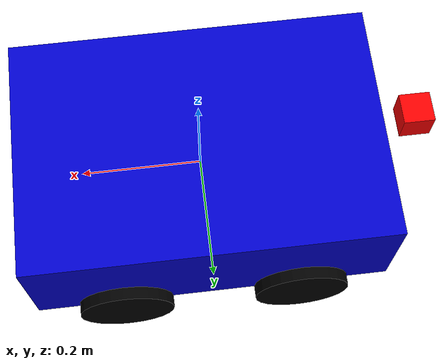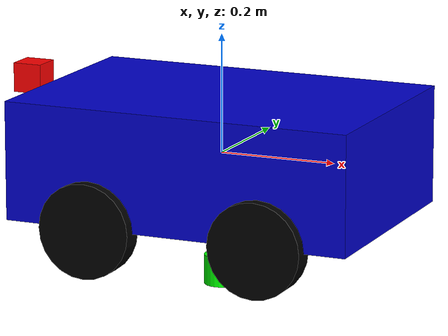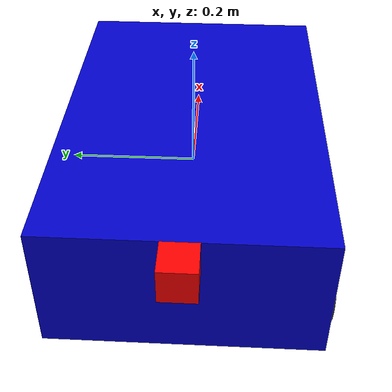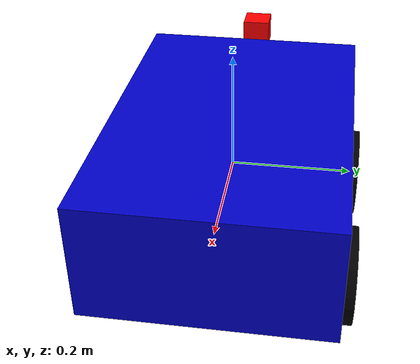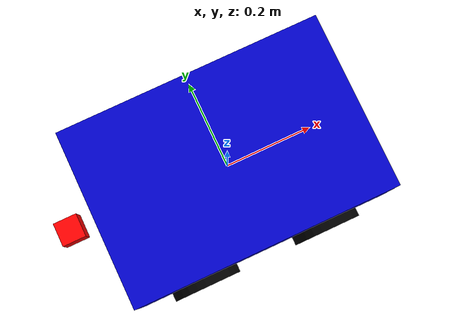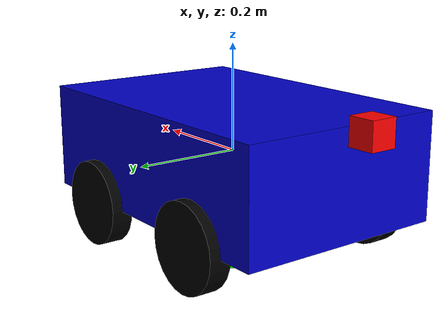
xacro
<?xml version="1.0"?>
<robot name="my_car" xmlns:xacro="http://www.ros.org/wiki/xacro">

  <!-- 定义参数 -->
  <xacro:property name="base_length" value="0.6" />
  <xacro:property name="base_width" value="0.4" />
  <xacro:property name="base_height" value="0.2" />
  <xacro:property name="wheel_radius" value="0.08" />
  <xacro:property name="wheel_width" value="0.04" />
  <xacro:property name="PI" value="3.14159" />

  <!-- 基础连杆 -->
  <link name="base_link">
    <visual>
      <geometry>
        <box size="${base_length} ${base_width} ${base_height}"/>
      </geometry>
      <material name="blue">
        <color rgba="0 0 0.8 1"/>
      </material>
    </visual>
    <collision>
      <geometry>
        <box size="${base_length} ${base_width} ${base_height}"/>
      </geometry>
    </collision>
    <inertial>
      <mass value="10.0"/>
      <inertia ixx="0.2" ixy="0.0" ixz="0.0" iyy="0.2" iyz="0.0" izz="0.2"/>
    </inertial>
  </link>

  <!-- 车轮定义 - 四个轮子 -->

  <!-- 左后轮（驱动轮） -->
  <link name="left_rear_wheel">
    <visual>
      <geometry>
        <cylinder radius="${wheel_radius}" length="${wheel_width}"/>
      </geometry>
      <material name="black">
        <color rgba="0 0 0 1"/>
      </material>
    </visual>
    <collision>
      <geometry>
        <cylinder radius="${wheel_radius}" length="${wheel_width}"/>
      </geometry>
    </collision>
    <inertial>
      <mass value="0.8"/>
      <inertia ixx="0.001" ixy="0.0" ixz="0.0" iyy="0.001" iyz="0.0" izz="0.001"/>
    </inertial>
  </link>

  <!-- 右后轮（驱动轮） -->
  <link name="right_rear_wheel">
    <visual>
      <geometry>
        <cylinder radius="${wheel_radius}" length="${wheel_width}"/>
      </geometry>
      <material name="black">
        <color rgba="0 0 0 1"/>
      </material>
    </visual>
    <collision>
      <geometry>
        <cylinder radius="${wheel_radius}" length="${wheel_width}"/>
      </geometry>
    </collision>
    <inertial>
      <mass value="0.8"/>
      <inertia ixx="0.001" ixy="0.0" ixz="0.0" iyy="0.001" iyz="0.0" izz="0.001"/>
    </inertial>
  </link>

  <!-- 左前轮（从动轮） -->
  <link name="left_front_wheel">
    <visual>
      <geometry>
        <cylinder radius="${wheel_radius}" length="${wheel_width}"/>
      </geometry>
      <material name="black">
        <color rgba="0 0 0 1"/>
      </material>
    </visual>
    <collision>
      <geometry>
        <cylinder radius="${wheel_radius}" length="${wheel_width}"/>
      </geometry>
    </collision>
    <inertial>
      <mass value="0.5"/>
      <inertia ixx="0.001" ixy="0.0" ixz="0.0" iyy="0.001" iyz="0.0" izz="0.001"/>
    </inertial>
  </link>

  <!-- 右前轮（从动轮） -->
  <link name="right_front_wheel">
    <visual>
      <geometry>
        <cylinder radius="${wheel_radius}" length="${wheel_width}"/>
      </geometry>
      <material name="black">
        <color rgba="0 0 0 1"/>
      </material>
    </visual>
    <collision>
      <geometry>
        <cylinder radius="${wheel_radius}" length="${wheel_width}"/>
      </geometry>
    </collision>
    <inertial>
      <mass value="0.5"/>
      <inertia ixx="0.001" ixy="0.0" ixz="0.0" iyy="0.001" iyz="0.0" izz="0.001"/>
    </inertial>
  </link>

  <!-- 车轮关节 -->

  <!-- 左后轮关节（驱动轮） -->
  <joint name="left_rear_wheel_joint" type="continuous">
    <parent link="base_link"/>
    <child link="left_rear_wheel"/>
    <!-- 车头朝向X轴负方向，所以后轮在X轴正方向 -->
    <origin xyz="${base_length/4} ${base_width/2} -${base_height/2}" rpy="${PI/2} 0 0"/>
    <axis xyz="0 1 0"/>
  </joint>

  <!-- 右后轮关节（驱动轮） -->
  <joint name="right_rear_wheel_joint" type="continuous">
    <parent link="base_link"/>
    <child link="right_rear_wheel"/>
    <origin xyz="${base_length/4} -${base_width/2} -${base_height/2}" rpy="${PI/2} 0 0"/>
    <axis xyz="0 1 0"/>
  </joint>

  <!-- 左前轮关节（从动轮） -->
  <joint name="left_front_wheel_joint" type="continuous">
    <parent link="base_link"/>
    <child link="left_front_wheel"/>
    <!-- 前轮在X轴负方向 -->
    <origin xyz="-${base_length/4} ${base_width/2} -${base_height/2}" rpy="${PI/2} 0 0"/>
    <axis xyz="0 1 0"/>
  </joint>

  <!-- 右前轮关节（从动轮） -->
  <joint name="right_front_wheel_joint" type="continuous">
    <parent link="base_link"/>
    <child link="right_front_wheel"/>
    <origin xyz="-${base_length/4} -${base_width/2} -${base_height/2}" rpy="${PI/2} 0 0"/>
    <axis xyz="0 1 0"/>
  </joint>

  <!-- 传感器配置 -->

  <!-- 摄像头连杆（在车头-X轴负方向） -->
  <link name="camera_link">
    <visual>
      <geometry>
        <box size="0.05 0.05 0.05"/>
      </geometry>
      <material name="red">
        <color rgba="1 0 0 1"/>
      </material>
    </visual>
    <inertial>
      <mass value="0.1"/>
      <inertia ixx="0.0001" ixy="0.0" ixz="0.0" iyy="0.0001" iyz="0.0" izz="0.0001"/>
    </inertial>
  </link>

  <joint name="camera_joint" type="fixed">
    <parent link="base_link"/>
    <child link="camera_link"/>
    <!-- 车头位置，X轴负方向 -->
    <origin xyz="-${base_length/2 + 0.05} 0 0.1" rpy="0 0 0"/>
  </joint>

  <!-- 激光雷达连杆（在车底盘中心，避免扫描到车轮） -->
  <link name="lidar_link">
    <visual>
      <geometry>
        <cylinder radius="0.03" length="0.05"/>
      </geometry>
      <material name="green">
        <color rgba="0 1 0 1"/>
      </material>
    </visual>
    <inertial>
      <mass value="0.1"/>
      <inertia ixx="0.0001" ixy="0.0" ixz="0.0" iyy="0.0001" iyz="0.0" izz="0.0001"/>
    </inertial>
  </link>

  <joint name="lidar_joint" type="fixed">
    <parent link="base_link"/>
    <child link="lidar_link"/>
    <!-- 车底盘中心，提高位置避免扫描到车轮 -->
    <origin xyz="0 0 -${base_height/2 + 0.1}" rpy="0 0 0"/>
  </joint>

  <!-- Gazebo插件配置 -->

  <!-- 基础Gazebo属性 -->
  <gazebo reference="base_link">
    <material>Gazebo/Blue</material>
  </gazebo>

  <gazebo reference="left_rear_wheel">
    <material>Gazebo/Black</material>
  </gazebo>

  <gazebo reference="right_rear_wheel">
    <material>Gazebo/Black</material>
  </gazebo>

  <gazebo reference="left_front_wheel">
    <material>Gazebo/Black</material>
  </gazebo>

  <gazebo reference="right_front_wheel">
    <material>Gazebo/Black</material>
  </gazebo>

  <!-- 差速驱动插件（只控制后轮） -->
  <gazebo>
    <plugin name="differential_drive_controller" filename="libgazebo_ros_diff_drive.so">
      <commandTopic>cmd_vel</commandTopic>
      <odometryTopic>odom</odometryTopic>
      <odometryFrame>odom</odometryFrame>
      <robotBaseFrame>base_link</robotBaseFrame>
      <publishOdomTF>true</publishOdomTF>
      <wheelSeparation>${base_width}</wheelSeparation>
      <wheelDiameter>${2 * wheel_radius}</wheelDiameter>
      <maxWheelTorque>30</maxWheelTorque>
      <maxWheelAcceleration>1.0</maxWheelAcceleration>
      <publishWheelTF>false</publishWheelTF>
      <publishTf>true</publishTf>
      <leftJoint>left_rear_wheel_joint</leftJoint>
      <rightJoint>right_rear_wheel_joint</rightJoint>
    </plugin>
  </gazebo>

  <!-- 摄像头插件 -->
  <gazebo reference="camera_link">
    <sensor type="camera" name="camera1">
      <update_rate>30.0</update_rate>
      <camera name="head">
        <horizontal_fov>1.3962634</horizontal_fov>
        <image>
          <width>640</width>
          <height>480</height>
          <format>R8G8B8</format>
        </image>
        <clip>
          <near>0.02</near>
          <far>300</far>
        </clip>
        <noise>
          <type>gaussian</type>
          <mean>0.0</mean>
          <stddev>0.007</stddev>
        </noise>
      </camera>
      <plugin name="camera_controller" filename="libgazebo_ros_camera.so">
        <alwaysOn>true</alwaysOn>
        <updateRate>0.0</updateRate>
        <cameraName>camera</cameraName>
        <imageTopicName>image_raw</imageTopicName>
        <cameraInfoTopicName>camera_info</cameraInfoTopicName>
        <frameName>camera_link</frameName>
        <hackBaseline>0.07</hackBaseline>
      </plugin>
    </sensor>
  </gazebo>

  <!-- 激光雷达插件 - 调整参数避免扫描到车轮 -->
  <gazebo reference="lidar_link">
    <sensor type="ray" name="lidar">
      <pose>0 0 0 0 0 0</pose>
      <visualize>true</visualize>
      <update_rate>10</update_rate>
      <ray>
        <scan>
          <horizontal>
            <samples>360</samples>
            <resolution>1</resolution>
            <min_angle>-${PI}</min_angle>
            <max_angle>${PI}</max_angle>
          </horizontal>
        </scan>
        <range>
          <min>0.15</min>  <!-- 增加最小距离避免扫描到车轮 -->
          <max>10.0</max>
          <resolution>0.01</resolution>
        </range>
        <noise>
          <type>gaussian</type>
          <mean>0.0</mean>
          <stddev>0.01</stddev>
        </noise>
      </ray>
      <plugin name="gazebo_ros_lidar_controller" filename="libgazebo_ros_ray_sensor.so">
        <topicName>scan</topicName>
        <frameName>lidar_link</frameName>
      </plugin>
    </sensor>
  </gazebo>

</robot>
